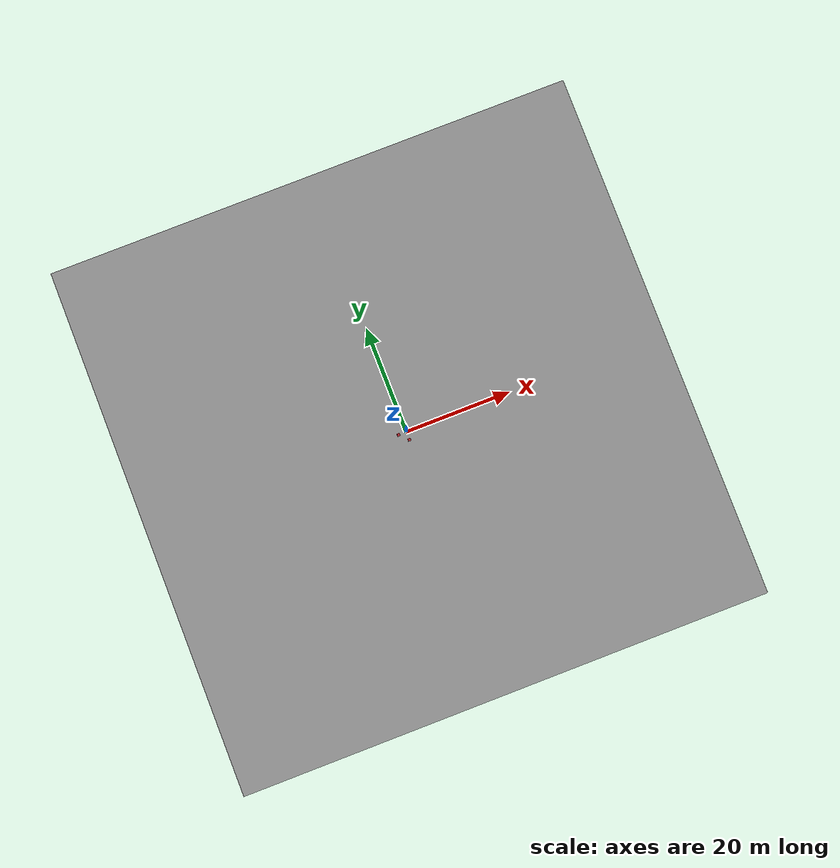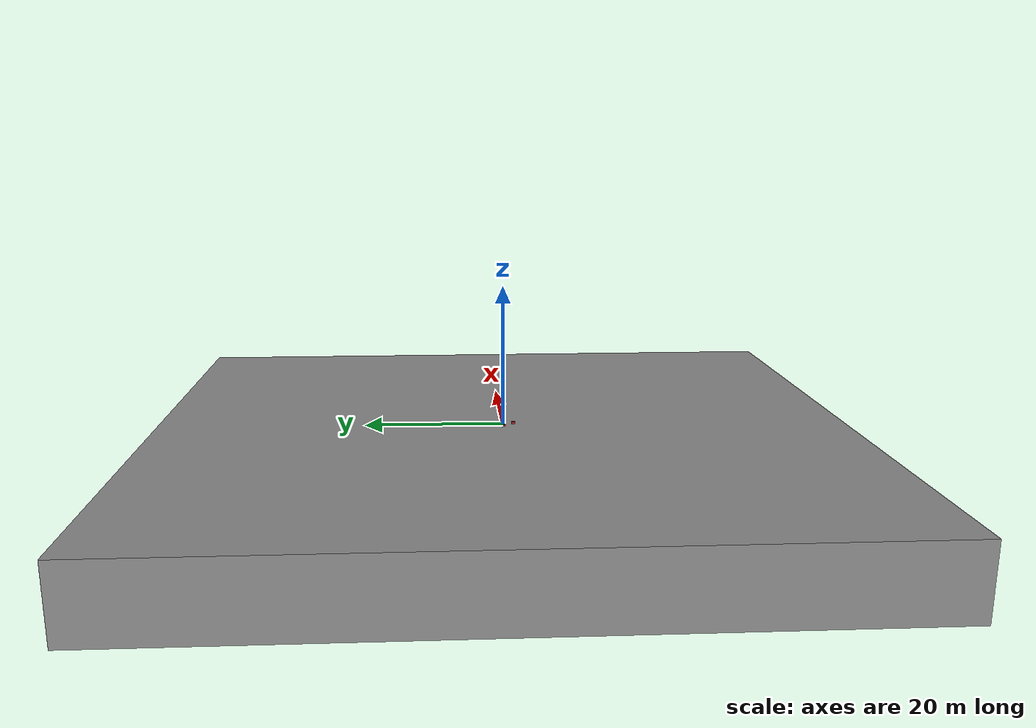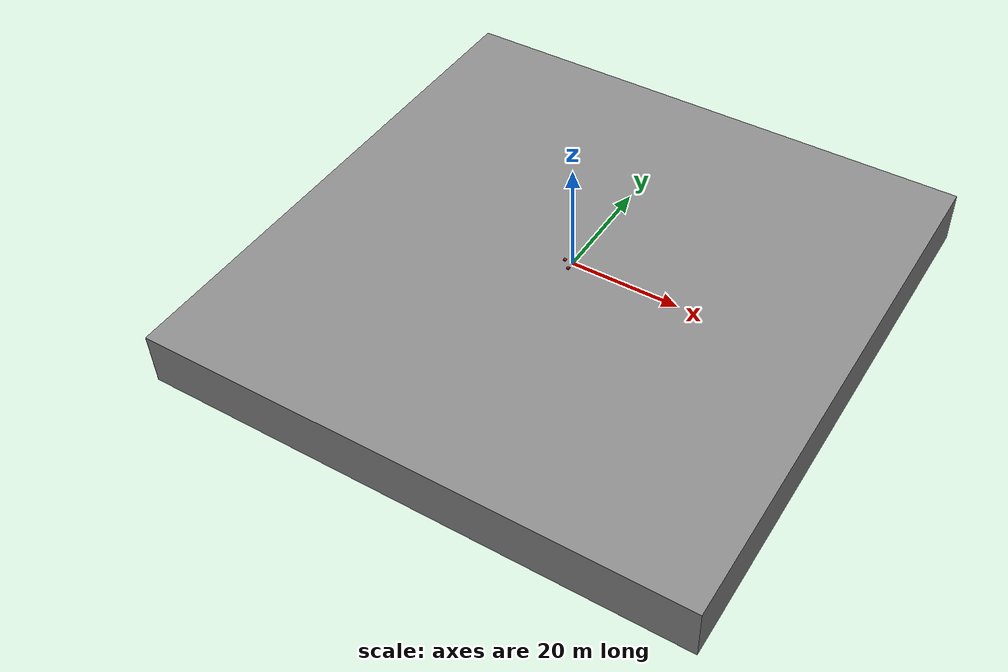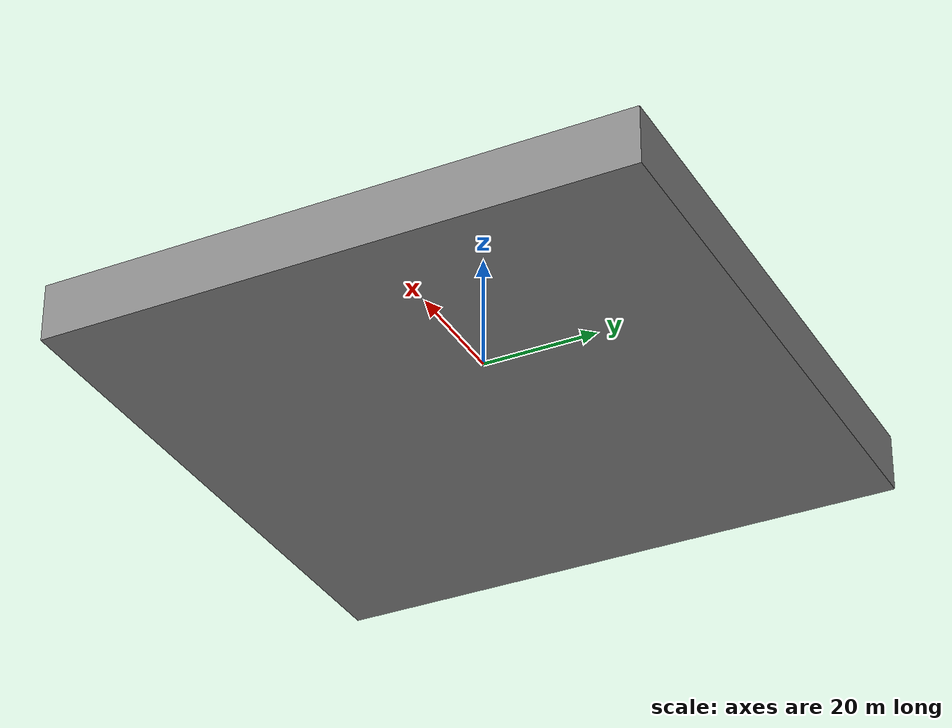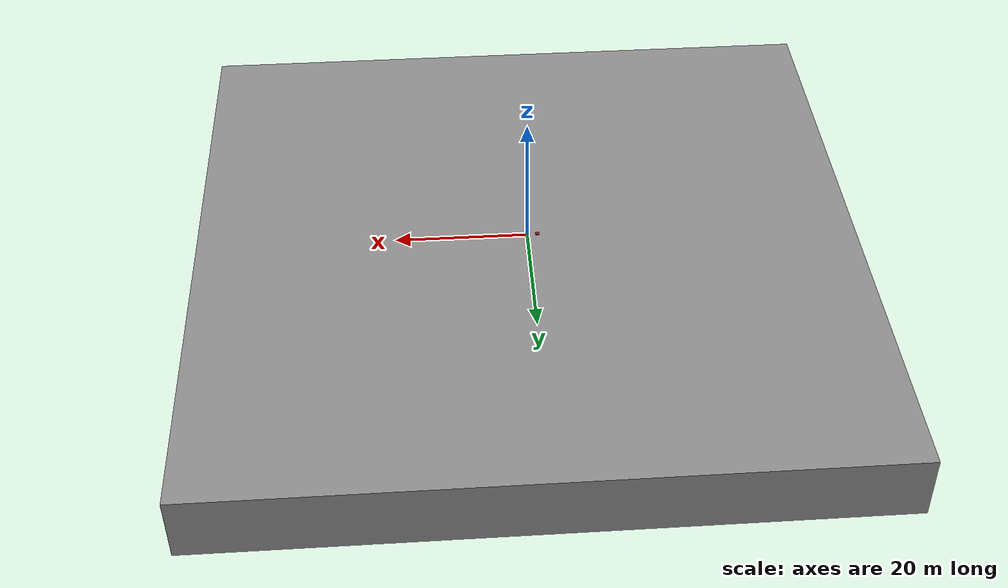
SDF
<?xml version='1.0'?>

<sdf version='1.6'>
  <model name='RaibertHopper2D'>
    <link name='ground'>
      <pose frame=''>0 0 -5 0 0 0</pose>
      <inertial>
        <pose frame=''>0 0 0 0 0 0</pose>
        <mass>0</mass>
        <inertia>
          <ixx>0</ixx>
          <ixy>0</ixy>
          <ixz>0</ixz>
          <iyy>0</iyy>
          <iyz>0</iyz>
          <izz>0</izz>
        </inertia>
      </inertial>
      <collision name='ground_collision'>
        <pose frame=''>0 0 0 0 0 0</pose>
        <geometry>
          <box>
            <size>100.0 100.0 10.0</size>
          </box>
        </geometry>
      </collision>
      <visual name='ground_visual'>
        <pose frame=''>0 0 0 0 0 0</pose>
        <geometry>
          <box>
            <size>100.0 100.0 10.0</size>
          </box>
        </geometry>
        <material>
          <diffuse>0.54 0.54 0.54 0.9</diffuse>
        </material>
      </visual>
    </link>

    <link name='body'>
      <pose frame=''>0 0 0 0 0 0</pose>
      <inertial>
        <pose frame=''>0 0 0 0 0 0</pose>
        <mass>1.0</mass>
        <inertia>
          <ixx>1.0</ixx>
          <ixy>0</ixy>
          <ixz>0</ixz>
          <iyy>1.0</iyy>
          <iyz>0</iyz>
          <izz>1.0</izz>
        </inertia>
      </inertial>
      <visual name='body_visual_ny'>
        <pose frame=''>0 -1.5 0 0 0 0</pose>
        <geometry>
          <box>
            <size>.5 .5 .5</size>
          </box>
        </geometry>
        <material>
          <diffuse>0.64 0.12 0.15 0.9</diffuse>
        </material>
      </visual>
      <visual name='body_visual_py'>
        <pose frame=''>0 -1.5 0 0 0 0</pose>
        <geometry>
          <box>
            <size>.5 .5 .5</size>
          </box>
        </geometry>
        <material>
          <diffuse>0.64 0.12 0.15 0.9</diffuse>
        </material>
      </visual>
      <visual name='body_visual_nx'>
        <pose frame=''>-1.5 0 0 0 0 0</pose>
        <geometry>
          <box>
            <size>.5 .5 .5</size>
          </box>
        </geometry>
        <material>
          <diffuse>0.64 0.12 0.15 0.9</diffuse>
        </material>
      </visual>
      <visual name='body_visual_px'>
        <pose frame=''>1.5 0 0 0 0 0</pose>
        <geometry>
          <box>
            <size>.5 .5 .5</size>
          </box>
        </geometry>
        <material>
          <diffuse>0.64 0.12 0.15 0.9</diffuse>
        </material>
      </visual>

      <collision name='body_collision_ny'>
        <pose frame=''>0 -1.5 0 0 0 0</pose>
        <geometry>
          <box>
            <size>.5 .5 .5</size>
          </box>
        </geometry>
      </collision>
      <collision name='body_collision_py'>
        <pose frame=''>0 1.5 0 0 0 0</pose>
        <geometry>
          <box>
            <size>.5 .5 .5</size>
          </box>
        </geometry>
      </collision>

    </link>

    <joint name='body_x' type='prismatic'>
      <child>body</child>
      <parent>ground</parent>
      <axis>
        <xyz>1 0 0</xyz>
        <limit>
          <effort>0.0</effort>
        </limit>
        <dynamics>
          <damping>0</damping>
          <friction>0</friction>
          <spring_reference>0</spring_reference>
          <spring_stiffness>0</spring_stiffness>
        </dynamics>
        <use_parent_model_frame>1</use_parent_model_frame>
      </axis>
    </joint>

    <joint name='body_z' type='prismatic'>
      <child>body</child>
      <parent>ground</parent>
      <axis>
        <xyz>0 0 1</xyz>
        <limit>
          <effort>0.0</effort>
        </limit>
        <dynamics>
          <damping>0</damping>
          <friction>0</friction>
          <spring_reference>0</spring_reference>
          <spring_stiffness>0</spring_stiffness>
        </dynamics>
        <use_parent_model_frame>1</use_parent_model_frame>
      </axis>
    </joint>

  </model>
</sdf>
